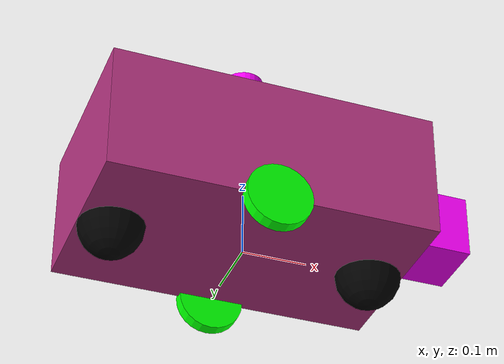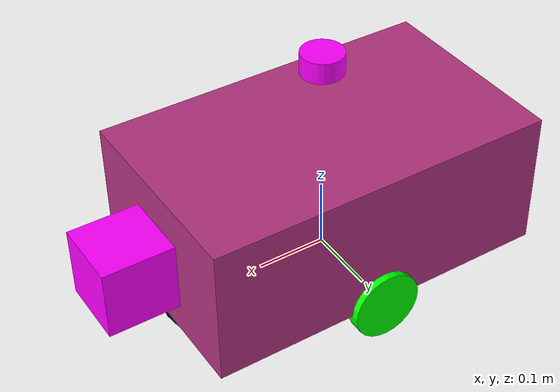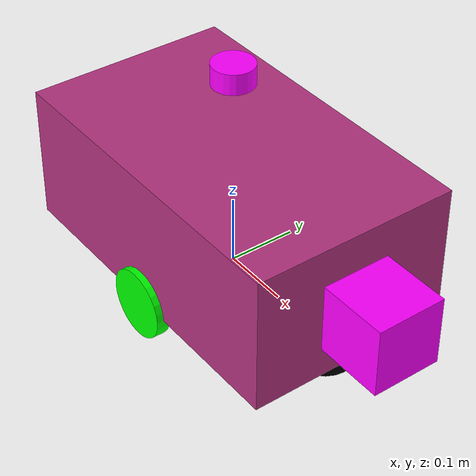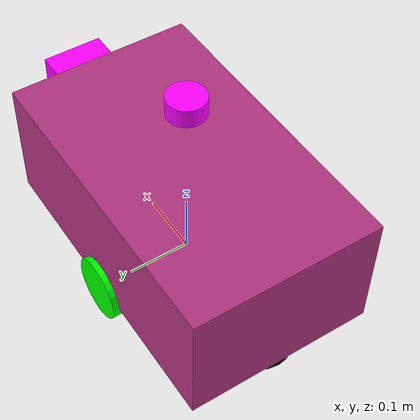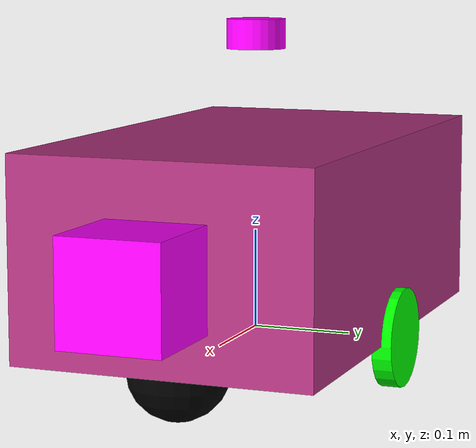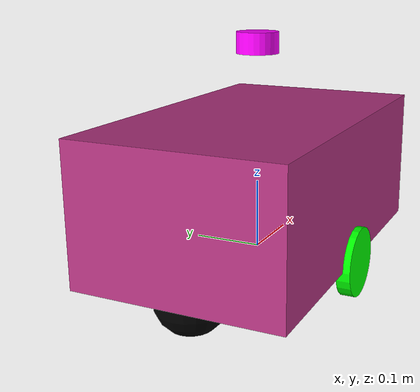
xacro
<?xml version="1.0"?>
<robot name="case" xmlns:xacro="http://www.ros.org/wiki/xacro">

  <!-- Importando módulos -->
  <xacro:include filename="$(find robot_description)/urdf/wheels.xacro"/>
  <xacro:include filename="$(find robot_description)/urdf/sensors.xacro"/>

  <!-- Base do robô -->
  <link name="base_link">
    <visual>
      <geometry>
        <box size="0.001 0.001 0.001"/>
      </geometry>
    </visual>
  </link>

  <!-- Chassis -->
  <link name="chassis">
    <visual>
      <origin xyz="0 0 0" rpy="0 0 0"/>
      <geometry>
        <box size="0.5 0.3 0.2"/>
      </geometry>
      <material name="gray">
        <color rgba="0.7 0.2 0.5 1"/>
      </material>
    </visual>
    <collision>
      <origin xyz="0 0 0" rpy="0 0 0"/>
      <geometry>
        <box size="0.5 0.3 0.2"/>
      </geometry>
    </collision>
    <inertial>
      <mass value="100.0"/>
      <origin xyz="0 0 0" rpy="0 0 0"/>
      <inertia ixx="0.1" ixy="0" ixz="0" iyy="0.1" iyz="0" izz="0.1"/>
    </inertial>
  </link>

  <joint name="chassis_joint" type="fixed">
    <parent link="base_link"/>
    <child link="chassis"/>
    <origin xyz="0 0 0.1" rpy="0 0 0"/>
  </joint>

  <!-- Caster Ball Frente -->
  <link name="caster_ball_front">
    <visual>
      <geometry>
        <sphere radius="0.05"/>
      </geometry>
      <material name="black">
        <color rgba="0 0 0 1"/>
      </material>
    </visual>
    <collision>
      <geometry>
        <sphere radius="0.05"/>
      </geometry>
    </collision>
    <inertial>
      <mass value="0.5"/>
      <origin xyz="0 0 0" rpy="0 0 0"/>
      <inertia ixx="0.001" ixy="0" ixz="0" iyy="0.001" iyz="0" izz="0.001"/>
    </inertial>
  </link>

  <joint name="caster_joint_front" type="fixed">
    <parent link="chassis"/>
    <child link="caster_ball_front"/>
    <origin xyz="0.2 0 -0.1" rpy="0 0 0"/>
  </joint>

  <gazebo reference="caster_ball_front">
    <material>Gazebo/Black</material>
    <mu1 value="0.001"/>
    <mu2 value="0.001"/>
  </gazebo>

  <!-- Caster Ball Traseira -->
  <link name="caster_ball_back">
    <visual>
      <geometry>
        <sphere radius="0.05"/>
      </geometry>
      <material name="black">
        <color rgba="0 0 0 1"/>
      </material>
    </visual>
    <collision>
      <geometry>
        <sphere radius="0.05"/>
      </geometry>
    </collision>
    <inertial>
      <mass value="0.5"/>
      <origin xyz="0 0 0" rpy="0 0 0"/>
      <inertia ixx="0.001" ixy="0" ixz="0" iyy="0.001" iyz="0" izz="0.001"/>
    </inertial>
  </link>

  <joint name="caster_joint_back" type="fixed">
    <parent link="chassis"/>
    <child link="caster_ball_back"/>
    <origin xyz="-0.2 0 -0.1" rpy="0 0 0"/>
  </joint>

  <gazebo reference="caster_ball_back">
    <material>Gazebo/Black</material>
    <mu1 value="0.001"/>
    <mu2 value="0.001"/>
  </gazebo>

  <!-- Rodas -->
  <xacro:wheel wheel_name="left_wheel" wheel_x="0" wheel_y="0.15" wheel_z="0" wheel_rpy="-1.57 0 0"/>
  <xacro:wheel wheel_name="right_wheel" wheel_x="0" wheel_y="-0.15" wheel_z="0" wheel_rpy="-1.57 0 0"/>

  <!-- Sensores -->
  <xacro:sensor_macro sensor_name="imu_link" sensor_x="0" sensor_y="0" sensor_z="0"/>
  <xacro:sensor_macro sensor_name="lidar_link" sensor_x="0" sensor_y="0" sensor_z="0.2"/>
  <xacro:sensor_macro sensor_name="camera_link" sensor_x="0.3" sensor_y="0" sensor_z="-0.005"/>

  <!-- Plugin de Controle Diferencial -->
  <gazebo>
    <plugin name="differential_drive_controller" filename="libgazebo_ros_diff_drive.so">
      <!-- Configurações básicas -->
      <update_rate>50</update_rate>
      <left_joint>left_wheel_joint</left_joint>
      <right_joint>right_wheel_joint</right_joint>
      <wheel_separation>0.3</wheel_separation>
      <wheel_diameter>0.1</wheel_diameter>

      <!-- Reduzir torque e aceleração inicial -->
      <max_wheel_torque>5</max_wheel_torque>
      <max_wheel_acceleration>0.5</max_wheel_acceleration>

      <!-- Configurações de odometria -->
      <command_topic>cmd_vel</command_topic>
      <publish_odom>true</publish_odom>
      <publish_odom_tf>false</publish_odom_tf>
      <publish_wheel_tf>true</publish_wheel_tf>
      <odometry_topic>odom</odometry_topic>
      <robot_base_frame>base_link</robot_base_frame>
      <odometry_frame>odom</odometry_frame>

      <!-- These parameters tell the plugin to publish frame transforms with these names -->
      <left_wheel_frame>left_wheel</left_wheel_frame>
      <right_wheel_frame>right_wheel</right_wheel_frame>
    </plugin>
  </gazebo>
</robot>

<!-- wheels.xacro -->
<robot xmlns:xacro="http://www.ros.org/wiki/xacro">

  <!-- Variáveis para as propriedades das rodas -->
  <xacro:property name="wheel_radius" value="0.05"/>
  <xacro:property name="wheel_length" value="0.02"/>

  <!-- Macro para criar rodas -->
  <xacro:macro name="wheel" params="wheel_name wheel_x wheel_y wheel_z wheel_rpy">

    <!-- Definição da roda -->
    <link name="${wheel_name}">
      <inertial>
        <mass value="5"/>
        <origin xyz="0 0 0"/>
        <inertia ixx="0.01" ixy="0" ixz="0" iyy="0.01" iyz="0" izz="0.01"/>
      </inertial>

      <visual>
        <geometry>
          <cylinder radius="${wheel_radius}" length="${wheel_length}"/>
        </geometry>
        <material name="black">
          <color rgba="0 1 0 0"/>
        </material>
      </visual>

      <collision>
        <geometry>
          <cylinder radius="${wheel_radius}" length="${wheel_length}"/>
        </geometry>
      </collision>
    </link>

    <!-- Definição da junta -->
    <joint name="${wheel_name}_joint" type="continuous">
      <parent link="base_link"/>
      <child link="${wheel_name}"/>
      <origin xyz="${wheel_x} ${wheel_y} ${wheel_z}" rpy="${wheel_rpy}"/>
      <axis xyz="0 0 1"/>
    </joint>
  </xacro:macro>
</robot>

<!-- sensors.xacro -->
<robot xmlns:xacro="http://www.ros.org/wiki/xacro">

  <!-- Macro para adicionar sensores -->
  <xacro:macro name="sensor_macro" params="sensor_name sensor_x sensor_y sensor_z">
    <link name="${sensor_name}">
      <visual>
        <origin xyz="0 0 0" rpy="0 0 0"/>
        <geometry>
          <!-- Use cylinder for LIDAR, box for others -->
          <xacro:if value="${sensor_name == 'lidar_link'}">
            <cylinder length="0.03" radius="0.03"/>
          </xacro:if>
          <xacro:unless value="${sensor_name == 'lidar_link'}">
            <box size="0.1 0.1 0.1"/>
          </xacro:unless>
        </geometry>
        <material name="${sensor_name}_color">
          <color rgba="1 0 1 1"/>
        </material>
      </visual>
      <collision>
        <origin xyz="0 0 0" rpy="0 0 0"/>
        <geometry>
          <xacro:if value="${sensor_name == 'lidar_link'}">
            <cylinder length="0.03" radius="0.03"/>
          </xacro:if>
          <xacro:unless value="${sensor_name == 'lidar_link'}">
            <box size="0.1 0.1 0.1"/>
          </xacro:unless>
        </geometry>
      </collision>
      <inertial>
        <mass value="0.1"/>
        <inertia ixx="0.001" ixy="0" ixz="0" iyy="0.001" iyz="0" izz="0.001"/>
      </inertial>
    </link>

    <joint name="${sensor_name}_joint" type="fixed">
      <origin xyz="${sensor_x} ${sensor_y} ${sensor_z}" rpy="0 0 0"/>
      <parent link="chassis"/>
      <child link="${sensor_name}"/>
    </joint>
  </xacro:macro>

  <!-- Plugins para os Sensores -->
  <!-- IMU -->
  <gazebo reference="imu_link">
    <sensor name="imu_sensor" type="imu">
      <always_on>true</always_on>
      <update_rate>30</update_rate>
      <visualize>true</visualize>
      <plugin name="imu_plugin" filename="libgazebo_ros_imu_sensor.so">
        <initial_orientation_as_reference>false</initial_orientation_as_reference>
        <frame_name>imu_link</frame_name>
        <topic_name>imu/data</topic_name>
        <gaussian_noise>0.0</gaussian_noise>
        <xyz_offset>0 0 0</xyz_offset>
        <rpy_offset>0 0 0</rpy_offset>
        <update_rate>100</update_rate>
      </plugin>
    </sensor>
  </gazebo>

  <!-- LIDAR -->
  <gazebo reference="lidar_link">
    <sensor name="laser" type="ray">
      <pose>0 0 0 0 0 0</pose>
      <visualize>true</visualize>
      <update_rate>10</update_rate>
      <ray>
        <scan>
          <horizontal>
            <samples>360</samples>
            <min_angle>-3.14</min_angle>
            <max_angle>3.14</max_angle>
          </horizontal>
        </scan>
        <range>
          <min>0.3</min>
          <max>12</max>
        </range>
      </ray>
      <plugin name="laser_controller" filename="libgazebo_ros_ray_sensor.so">
        <ros>
          <argument>~/out:=scan</argument>
        </ros>
        <output_type>sensor_msgs/LaserScan</output_type>
        <frame_name>lidar_link</frame_name>
      </plugin>
    </sensor>
  </gazebo>

  <!-- Camera -->
  <gazebo reference="camera_link">
    <sensor name="camera_sensor" type="camera">
      <update_rate>15</update_rate>
      <camera>
        <horizontal_fov>1.57</horizontal_fov>
        <image>
          <width>640</width>
          <height>480</height>
          <format>R8G8B8</format>
        </image>
      </camera>
      <plugin name="camera_controller" filename="libgazebo_ros_camera.so">
        <always_on>true</always_on>
        <update_rate>15</update_rate>
        <camera_name>camera</camera_name>
        <frame_name>camera_link</frame_name>
        <image_topic>/camera/image_raw</image_topic>
        <camera_info_topic>/camera/camera_info</camera_info_topic>
      </plugin>
    </sensor>
  </gazebo>
</robot>
